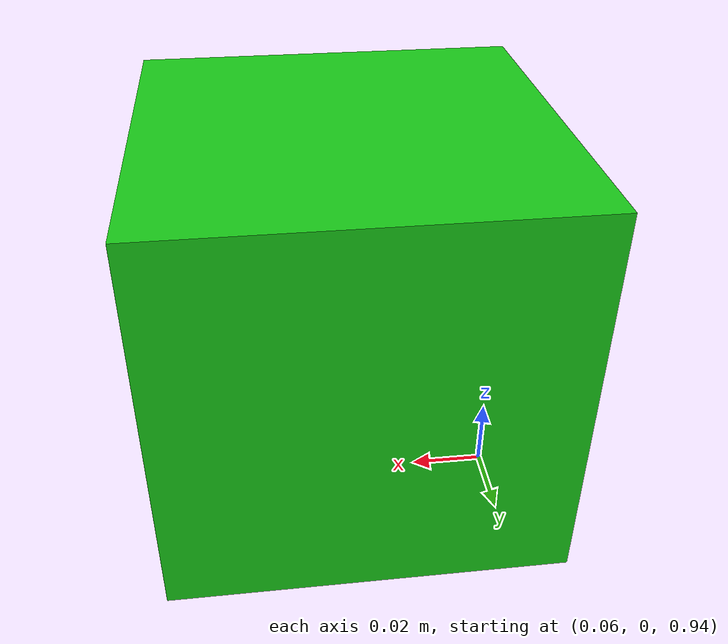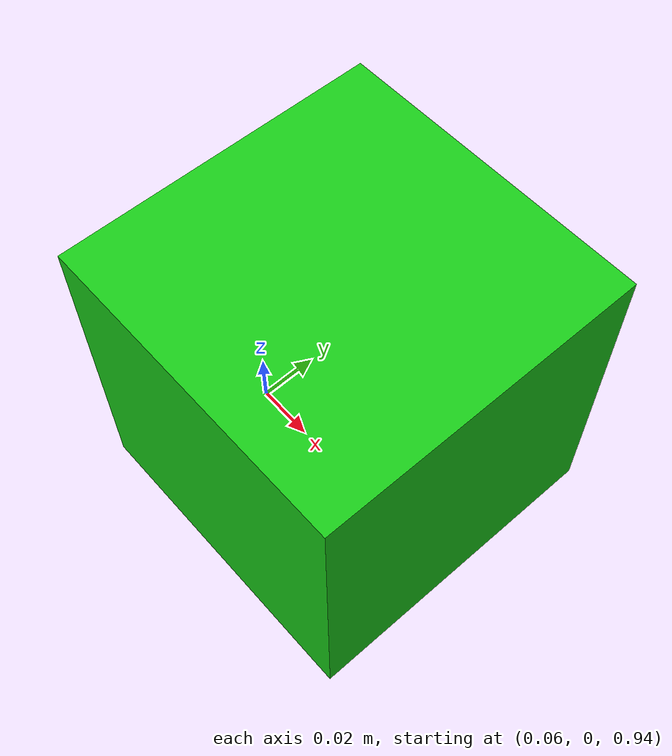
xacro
<?xml version="1.0"?>
<robot name="camera_sensor" xmlns:xacro="http://www.ros.org/wiki/xacro">

  <!-- 기본 링크 (base_link)를 정의하고 카메라를 연결 -->
  <link name="base_link">
    <inertial>
      <mass value="1.0"/>
      <origin xyz="0 0 0" rpy="0 0 0"/>
      <inertia ixx="0.01" ixy="0" ixz="0" iyy="0.01" iyz="0" izz="0.01"/>
    </inertial>
  </link>

  <!-- 카메라 링크 -->
  <joint name="camera_joint" type="fixed">
    <parent link="base_link"/>
    <child link="camera_link"/>
    <!-- 원하는 위치에 카메라 배치 (예: 높이 1.0m) -->
    <origin xyz="0.1 0 1.0" rpy="0 0 0"/>
  </joint>

  <link name="camera_link">
    <inertial>
      <mass value="0.5"/>
      <origin xyz="0 0 0" rpy="0 0 0"/>
      <inertia ixx="0.005" ixy="0" ixz="0" iyy="0.005" iyz="0" izz="0.005"/>
    </inertial>
    <visual>
      <geometry>
         <box size="0.1 0.1 0.1"/>
      </geometry>
      <material name="">
         <color rgba="0.1 0.8 0.1 1"/>
      </material>
    </visual>
    <collision>
      <geometry>
         <box size="0.1 0.1 0.1"/>
      </geometry>
    </collision>
  </link>

  <!-- Gazebo 카메라 센서 정의 -->
  <gazebo reference="camera_link">
    <sensor type="camera" name="camera_sensor">
      <pose>0 0 0 0 0 0</pose>
      <update_rate>30</update_rate>
      <camera>
         <horizontal_fov>1.3962634</horizontal_fov>
         <image>
           <width>640</width>
           <height>480</height>
           <format>R8G8B8</format>
         </image>
         <clip>
           <near>0.1</near>
           <far>100</far>
         </clip>
      </camera>
      <plugin name="gazebo_ros_camera_controller" filename="libgazebo_ros_camera.so">
         <ros>
            <namespace>/camera</namespace>
         </ros>
         <cameraName>camera_sensor</cameraName>
         <frameName>camera_link</frameName>
      </plugin>
    </sensor>
  </gazebo>

</robot>
